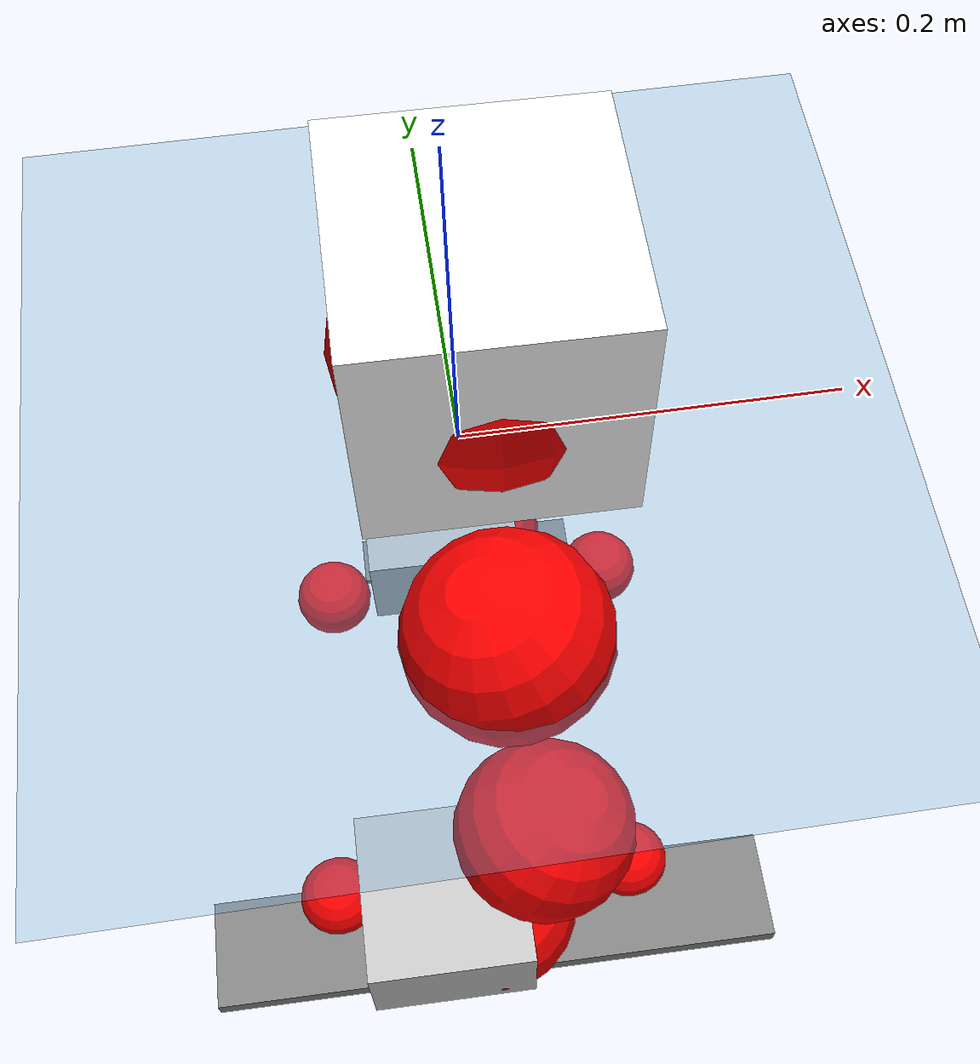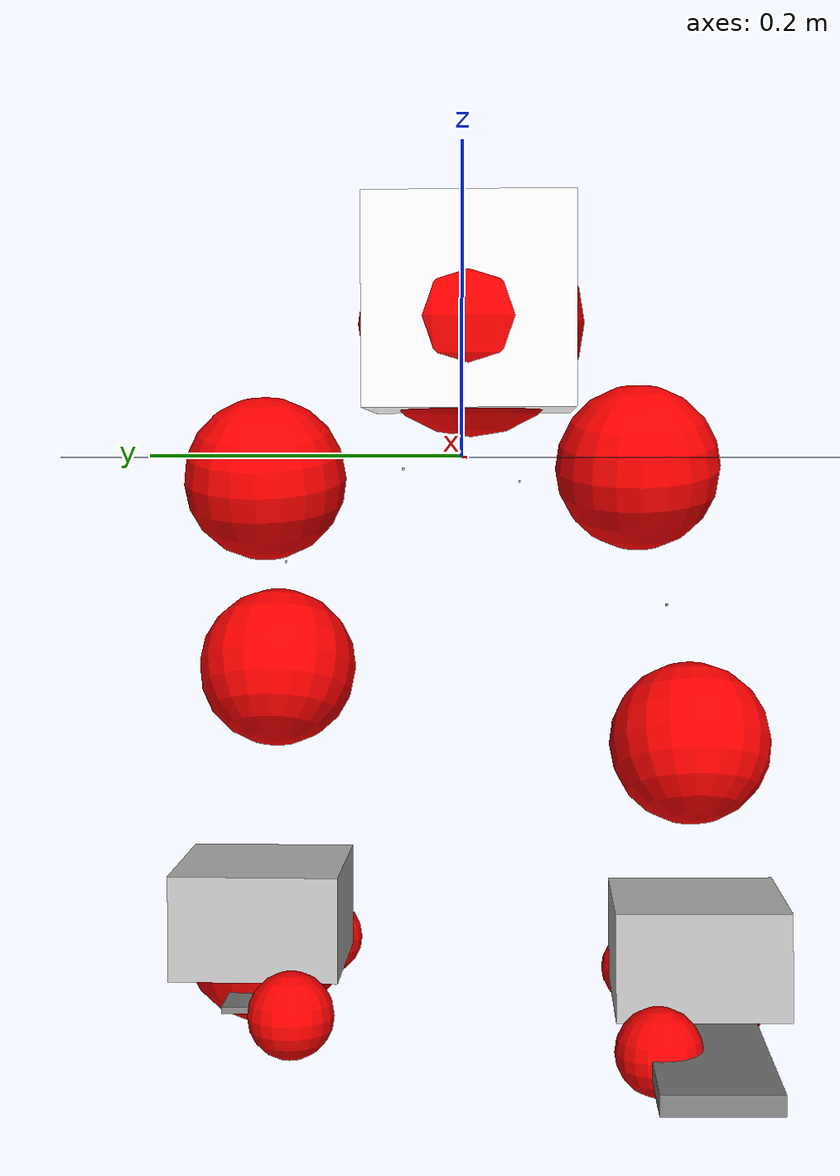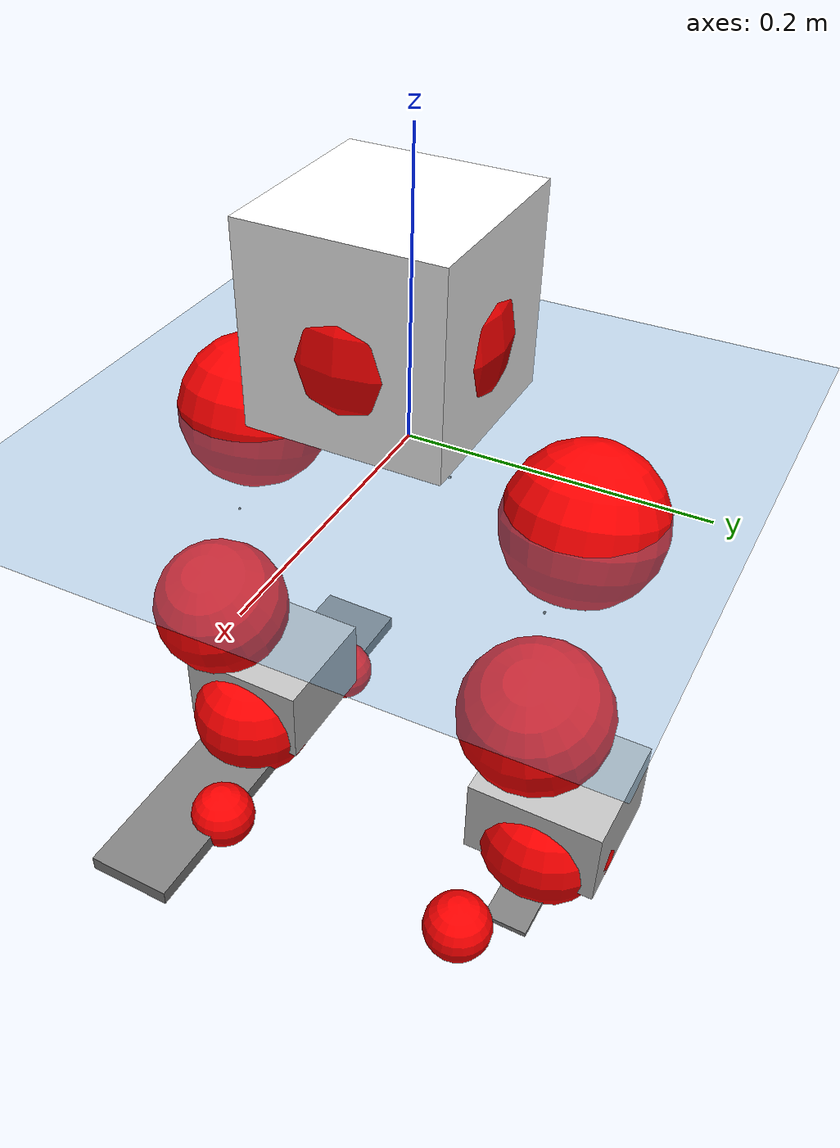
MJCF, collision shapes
<mujoco model="pi_12dof_release_v1">
  <compiler angle="radian" assetdir="assets" balanceinertia="true" inertiafromgeom="false"/>

  <option timestep="0.005" density="1.2" viscosity="2e-05"/>

  <size nkey="1"/>

  <visual>
    <quality shadowsize="8192"/>
    <map shadowclip="0.5"/>
  </visual>

  <default>
    <default class="/">
      <joint armature="0.01" damping="0.01" frictionloss="0.01"/>
      <geom contype="0" conaffinity="0" group="1" solref="-1000 -80"/>
      <site size="0.01 0.005 0.005" group="5"/>
      <general forcelimited="true" biastype="affine" gainprm="20" biasprm="0 -20 -0.5"/>
      <default class="foot">
        <geom size="0.0845 0.036 0.005" type="box" condim="6" group="4" priority="1" friction="0.9 0.2 0.2" solimp="0.015 1 0.005"/>
      </default>
      <default class="reward_collision_sphere">
        <geom group="5" rgba="1 0 0 1"/>
      </default>
    </default>
  </default>

  <asset>
    <texture type="skybox" colorspace="auto" name="//unnamed_texture_0" builtin="gradient" rgb1="0.95 0.95 0.95" rgb2="0.95 0.95 0.95" width="100" height="600"/>
    <texture type="2d" colorspace="auto" name="texplane" builtin="checker" rgb1="0.345 0.575 0.748" rgb2="0.345 0.575 0.748" markrgb="1 1 1" width="512" height="512"/>
    <material name="MatPlane" class="/" texture="texplane" texuniform="true" texrepeat="2 2" specular="0.9"/>
    <mesh name="baselink_1" class="/" file="baselink_1.STL"/>
    <mesh name="r_hip_pitch_link" class="/" file="r_hip_pitch_link.STL"/>
    <mesh name="r_hip_roll_link" class="/" file="r_hip_roll_link.STL"/>
    <mesh name="r_thigh_link" class="/" file="r_thigh_link.STL"/>
    <mesh name="r_calf_link" class="/" file="r_calf_link.STL"/>
    <mesh name="r_ankle_pitch_link" class="/" file="r_ankle_pitch_link.STL"/>
    <mesh name="r_ankle_roll_link" class="/" file="r_ankle_roll_link.STL"/>
    <mesh name="l_hip_pitch_link" class="/" file="l_hip_pitch_link.STL"/>
    <mesh name="l_hip_roll_link" class="/" file="l_hip_roll_link.STL"/>
    <mesh name="l_thigh_link" class="/" file="l_thigh_link.STL"/>
    <mesh name="l_calf_link" class="/" file="l_calf_link.STL"/>
    <mesh name="l_ankle_pitch_link" class="/" file="l_ankle_pitch_link.STL"/>
    <mesh name="l_ankle_roll_link" class="/" file="l_ankle_roll_link.STL"/>
  </asset>

  <worldbody>
    <geom name="floor" class="/" size="100 100 0.125" type="plane" group="0" material="MatPlane"/>
    <light name="toplight_shadow" class="/" pos="0 0 5" dir="0.0990148 0.0990148 -0.990148" type="directional" ambient="0.04 0.04 0.04" diffuse="0.55 0.55 0.55" specular="0.12 0.12 0.12"/>
    <light name="toplight_fill" class="/" pos="0 0 5" dir="0.0990148 0.0990148 -0.990148" type="directional" castshadow="false" ambient="0.04 0.04 0.04" diffuse="0.3 0.3 0.3" specular="0.08 0.08 0.08"/>
    <body name="trunk" pos="0.0133502 -0.00550811 0.0107462" quat="0.999981 -0.00164778 0.00231869 -0.00546695">
      <inertial pos="0.0144498 -0.0113218 0.0395194" quat="0.672829 0.0650798 -0.0299061 0.736323" mass="4.33113" diaginertia="0.0435133 0.0576092 0.00393091"/>
      <joint name="//unnamed_joint_0" type="free"/>
      <geom name="//unnamed_geom_1" class="/" type="mesh" density="0" rgba="1 1 1 1" mesh="baselink_1"/>
      <geom name="//unnamed_geom_2" class="/" size="0.0660872 0.0660872 0.0660872" pos="0 0 0.0851617" type="box" rgba="1 1 1 1"/>
      <geom name="//unnamed_geom_3" class="reward_collision_sphere" size="0.0726959" pos="0 0 0.0745164"/>
      <site name="imu" class="/" pos="-0.0567775 0.0930735 0.0442919" size="0.0132174"/>
      <camera name="track" class="/" pos="0 -2.90541 0" quat="0.707107 0.707107 0 0" mode="trackcom"/>
      <camera name="ego_camera" class="/" pos="0.1086 0 0.191614" quat="-0.5 -0.5 0.5 0.5"/>
      <body name="r_hip_pitch_link" pos="-0.00311578 -0.0310859 -0.0266305" quat="0.992027 -0.0088348 -0.125705 0.0019031">
        <inertial pos="0.0122123 -0.0840828 0.00723996" quat="0.0309221 0.672536 -0.0272184 0.738917" mass="0.680566" diaginertia="0.000539607 0.000491235 7.74659e-05"/>
        <joint name="r_hip_pitch_joint" class="/" pos="0 0 0" axis="-0.0371062 -0.998958 -0.026564" stiffness="0.0813284" range="-1.79514 1.16881" armature="0.0205837" damping="0" frictionloss="0.00809834"/>
        <geom name="//unnamed_geom_4" class="/" type="mesh" density="0" rgba="0.75294 0.75294 0.75294 1" mesh="r_hip_pitch_link"/>
        <geom name="//unnamed_geom_5" class="/" size="0.000660872 0.000660872 0.000660872" type="box" rgba="0.75294 0.75294 0.75294 1"/>
        <body name="r_hip_roll_link" pos="0.00141628 -0.0758826 0.00689255" quat="1 -0.000348402 0.000423921 -0.000324873">
          <inertial pos="0.000892094 0.0170171 -0.0460764" quat="0.688115 -0.0594041 -0.0631468 0.720404" mass="0.920943" diaginertia="0.00187771 0.00195848 0.000154254"/>
          <joint name="r_hip_roll_joint" class="/" pos="0 0 0" axis="-0.997739 -0.0643846 -0.019254" stiffness="0.0584536" range="-0.210858 0.167998" armature="0.00707189" damping="0.054359" frictionloss="0.0187591"/>
          <geom name="//unnamed_geom_6" class="/" type="mesh" density="0" rgba="0.75294 0.75294 0.75294 1" mesh="r_hip_roll_link"/>
          <geom name="//unnamed_geom_7" class="/" size="0.000660872 0.000660872 0.000660872" type="box" rgba="0.75294 0.75294 0.75294 1"/>
          <geom name="//unnamed_geom_8" class="reward_collision_sphere" size="0.0528697"/>
          <body name="r_thigh_link" pos="-0.0191335 -0.0174374 -0.0867565" quat="1 2.56255e-05 -0.000128996 0.000283738">
            <inertial pos="0.00794706 0.0130513 -0.0635129" quat="0.735655 0.677338 -0.00472836 -0.00173936" mass="0.199493" diaginertia="0.000643672 0.000643414 7.55319e-05"/>
            <joint name="r_thigh_joint" class="/" pos="0 0 0" axis="-0.0598088 -0.0171568 -0.998062" range="-0.458145 0.403584" armature="0.00876531" damping="0.0771179" frictionloss="0.025564"/>
            <geom name="//unnamed_geom_9" class="/" type="mesh" density="0" rgba="0.75294 0.75294 0.75294 1" mesh="r_thigh_link"/>
            <geom name="//unnamed_geom_10" class="/" size="0.000660872 0.000660872 0.000660872" type="box" rgba="0.75294 0.75294 0.75294 1"/>
            <body name="r_calf_link" pos="-0.0104546 -0.0147937 -0.091824" quat="0.947523 0.000182365 0.319685 -0.00139301">
              <inertial pos="0.00713006 0.011212 -0.0771609" quat="0.996508 0.0298672 -0.0735784 0.0258084" mass="1.49785" diaginertia="0.0200096 0.0156481 0.000172804"/>
              <joint name="r_calf_joint" class="/" pos="0 0 0" axis="0.0175027 -0.999458 0.0278799" stiffness="0.0813087" range="-1.98012 0.663255" armature="0.0233668" damping="0" frictionloss="0.0150811"/>
              <geom name="//unnamed_geom_11" class="/" type="mesh" density="0" rgba="0.75294 0.75294 0.75294 1" mesh="r_calf_link"/>
              <geom name="//unnamed_geom_12" class="/" size="0.000660872 0.000660872 0.000660872" type="box" rgba="0.75294 0.75294 0.75294 1"/>
              <geom name="//unnamed_geom_13" class="reward_collision_sphere" size="0.0528697"/>
              <body name="r_ankle_pitch_link" pos="-0.0103116 0.0030379 -0.13459" quat="0.979907 0.00389315 -0.199414 -0.00100209">
                <inertial pos="0.00790569 0.00523055 0.0173409" quat="-0.0791108 0.722549 -0.0421429 0.685484" mass="0.287118" diaginertia="0.0017529 0.00111901 0.000127672"/>
                <joint name="r_ankle_pitch_joint" class="/" pos="0 0 0" axis="-0.0088646 -0.998982 0.0442287" range="-1.32624 0.140087" armature="0.0124011" damping="0.00643651" frictionloss="0.00288234"/>
                <geom name="//unnamed_geom_14" class="/" type="mesh" density="0" rgba="0.75294 0.75294 0.75294 1" mesh="r_ankle_pitch_link"/>
                <geom name="//unnamed_geom_15" class="/" size="0.051548 0.0528697 0.0330436" type="box" rgba="0.75294 0.75294 0.75294 1"/>
                <body name="r_ankle_roll_link" pos="0.103943 -0.00042151 -0.00233034" quat="1 2.79913e-06 9.84555e-07 -4.25113e-06">
                  <inertial pos="-0.0408247 -0.00263689 -0.0343614" quat="0.580793 0.411181 0.467555 0.524407" mass="1.74439" diaginertia="0.00784794 0.00635398 0.000576824"/>
                  <joint name="r_ankle_roll_joint" class="/" pos="0 0 0" axis="-0.996649 0.0670085 0.046902" range="-0.405265 0.464966" armature="0.0252311" damping="0" frictionloss="0.0207012"/>
                  <geom name="//unnamed_geom_16" class="/" type="mesh" density="0" rgba="0.75294 0.75294 0.75294 1" mesh="r_ankle_roll_link"/>
                  <geom name="//unnamed_geom_17" class="/" type="mesh" rgba="0.75294 0.75294 0.75294 1" mesh="r_ankle_roll_link"/>
                  <geom name="right_foot" class="foot" size="0.183781 0.0346602 0.00629638" pos="-0.0738483 0 -0.0468389"/>
                  <geom name="//unnamed_geom_19" class="reward_collision_sphere" size="0.0528697" pos="-0.0724002 0 -0.0212904"/>
                  <geom name="//unnamed_geom_20" class="reward_collision_sphere" size="0.0264349" pos="0.0217201 0.0290541 -0.0425808"/>
                  <geom name="//unnamed_geom_21" class="reward_collision_sphere" size="0.0264349" pos="-0.173761 0.0290541 -0.0425808"/>
                  <site name="right_foot" class="foot" pos="-0.0738483 0 -0.0468389" size="0.0132174"/>
                </body>
              </body>
            </body>
          </body>
        </body>
      </body>
      <body name="l_hip_pitch_link" pos="0.00613841 0.044259 -0.0184909" quat="0.992188 -0.000459448 -0.124748 -0.000601864">
        <inertial pos="-0.00094346 0.0833124 0.0161232" quat="-0.0609864 0.714702 0.0323607 0.696013" mass="0.76054" diaginertia="0.000699934 0.000839029 0.000138608"/>
        <joint name="l_hip_pitch_joint" class="/" pos="0 0 0" axis="0.0382017 0.998404 -0.0415908" stiffness="0.0118774" range="-1.52312 1.66866" armature="0.00341077" damping="0" frictionloss="0.0169611"/>
        <geom name="//unnamed_geom_22" class="/" type="mesh" density="0" rgba="0.75294 0.75294 0.75294 1" mesh="l_hip_pitch_link"/>
        <geom name="//unnamed_geom_23" class="/" size="0.000660872 0.000660872 0.000660872" type="box" rgba="0.75294 0.75294 0.75294 1"/>
        <body name="l_hip_roll_link" pos="-0.003972 0.0897846 -0.00533465" quat="1 -0.000245967 0.000130913 -0.000187187">
          <inertial pos="0.0129395 -0.00551962 -0.0461891" quat="0.730741 -0.135617 -0.0633809 0.66604" mass="0.85009" diaginertia="0.00226358 0.00152029 0.00018634"/>
          <joint name="l_hip_roll_joint" class="/" pos="0 0 0" axis="-0.999532 0.000607099 -0.0305745" range="-0.159379 -0.169315" armature="0.0209905" damping="0.103324" frictionloss="0.0136126"/>
          <geom name="//unnamed_geom_24" class="/" type="mesh" density="0" rgba="0.75294 0.75294 0.75294 1" mesh="l_hip_roll_link"/>
          <geom name="//unnamed_geom_25" class="/" size="0.000660872 0.000660872 0.000660872" type="box" rgba="0.75294 0.75294 0.75294 1"/>
          <geom name="//unnamed_geom_26" class="reward_collision_sphere" size="0.0528697"/>
          <body name="l_thigh_link" pos="0.0119601 -0.00977405 -0.0598775" quat="0.999998 0.000461596 -0.000291402 -0.00171958">
            <inertial pos="-0.011493 0.0102475 -0.0633372" quat="0.655686 0.7519 -0.0525114 0.0443228" mass="0.29905" diaginertia="0.000791744 0.000529699 8.59837e-05"/>
            <joint name="l_thigh_joint" class="/" pos="0 0 0" axis="0.000532322 -0.00530454 -0.999986" stiffness="0.0899858" range="-0.652137 0.520891" armature="0.0140255" damping="0.0136315" frictionloss="0.016645"/>
            <geom name="//unnamed_geom_27" class="/" type="mesh" density="0" rgba="0.75294 0.75294 0.75294 1" mesh="l_thigh_link"/>
            <geom name="//unnamed_geom_28" class="/" size="0.000660872 0.000660872 0.000660872" type="box" rgba="0.75294 0.75294 0.75294 1"/>
            <body name="l_calf_link" pos="-0.000795783 0.00801377 -0.0743828" quat="0.948765 0.000946247 0.315968 -0.00269994">
              <inertial pos="-0.0024105 -0.0104458 -0.0608884" quat="0.99998 0.00354374 0.000823618 0.00508737" mass="2.01606" diaginertia="0.0295 0.0299337 0.00029057"/>
              <joint name="l_calf_joint" class="/" pos="0 0 0" axis="0.00296645 0.999988 0.00378153" range="-1.01473 1.32426" armature="0.013494" damping="0.0121167" frictionloss="0.00757714"/>
              <geom name="//unnamed_geom_29" class="/" type="mesh" density="0" rgba="0.75294 0.75294 0.75294 1" mesh="l_calf_link"/>
              <geom name="//unnamed_geom_30" class="/" size="0.000660872 0.000660872 0.000660872" type="box" rgba="0.75294 0.75294 0.75294 1"/>
              <geom name="//unnamed_geom_31" class="reward_collision_sphere" size="0.0528697"/>
              <body name="l_ankle_pitch_link" pos="-0.00635515 0.000772069 -0.166015" quat="0.980039 0.00030328 -0.198807 -0.000439612">
                <inertial pos="0.0189276 -0.0145372 8.42659e-05" quat="-0.00550702 0.705931 0.00391783 0.708249" mass="0.571184" diaginertia="0.00202939 0.00180103 0.000158552"/>
                <joint name="l_ankle_pitch_joint" class="/" pos="0 0 0" axis="0.00426724 0.99999 0.000928879" stiffness="0.00921201" range="-0.176057 1.42739" armature="0.0220739" damping="0.0256679" frictionloss="0.00869778"/>
                <geom name="//unnamed_geom_32" class="/" type="mesh" density="0" rgba="0.75294 0.75294 0.75294 1" mesh="l_ankle_pitch_link"/>
                <geom name="//unnamed_geom_33" class="/" size="0.051548 0.0528697 0.0330436" type="box" rgba="0.75294 0.75294 0.75294 1"/>
                <body name="l_ankle_roll_link" pos="0.0916821 0.00219853 -0.00191301" quat="0.999996 -0.00161447 0.0012799 0.0021082">
                  <inertial pos="-0.0431902 0.000950722 -0.0142699" quat="0.568779 0.448663 0.428945 0.539628" mass="1.62997" diaginertia="0.00905243 0.00816454 0.000426932"/>
                  <joint name="l_ankle_roll_joint" class="/" pos="0 0 0" axis="-0.999195 0.0155268 0.0369933" stiffness="0.00949915" range="-0.32117 0.154191" armature="0.00437811" damping="0.0203386" frictionloss="0.0129587"/>
                  <geom name="//unnamed_geom_34" class="/" type="mesh" density="0" rgba="0.75294 0.75294 0.75294 1" mesh="l_ankle_roll_link"/>
                  <geom name="//unnamed_geom_35" class="/" type="mesh" rgba="0.75294 0.75294 0.75294 1" mesh="l_ankle_roll_link"/>
                  <geom name="left_foot" class="foot" size="0.0759091 0.0170126 0.00206532" pos="-0.0738483 0 -0.0468389"/>
                  <geom name="//unnamed_geom_37" class="reward_collision_sphere" size="0.0528697" pos="-0.0724002 0 -0.0212904"/>
                  <geom name="//unnamed_geom_38" class="reward_collision_sphere" size="0.0264349" pos="0.0217201 -0.0290541 -0.0425808"/>
                  <geom name="//unnamed_geom_39" class="reward_collision_sphere" size="0.0264349" pos="-0.173761 -0.0290541 -0.0425808"/>
                  <site name="left_foot" class="foot" pos="-0.0738483 0 -0.0468389" size="0.0132174"/>
                </body>
              </body>
            </body>
          </body>
        </body>
      </body>
    </body>
  </worldbody>

  <contact>
    <pair class="/" geom1="floor" geom2="right_foot" name="//unnamed_contact_1"/>
    <pair class="/" geom1="floor" geom2="left_foot" name="//unnamed_contact_0"/>
  </contact>

  <actuator>
    <general name="r_hip_pitch_joint" class="/" joint="r_hip_pitch_joint" forcerange="-28.3123 28.3123" gainprm="27.971" biasprm="0 -27.971 -0.700516"/>
    <general name="r_hip_roll_joint" class="/" joint="r_hip_roll_joint" forcerange="-44.3043 44.3043" gainprm="27.971" biasprm="0 -27.971 -0.700516"/>
    <general name="r_thigh_joint" class="/" joint="r_thigh_joint" forcerange="-16.3692 16.3692" gainprm="27.971" biasprm="0 -27.971 -0.700516"/>
    <general name="r_calf_joint" class="/" joint="r_calf_joint" forcerange="-36.4056 36.4056" gainprm="27.971" biasprm="0 -27.971 -0.700516"/>
    <general name="r_ankle_pitch_joint" class="/" joint="r_ankle_pitch_joint" forcerange="-18.4358 18.4358" gainprm="27.971" biasprm="0 -27.971 -0.700516"/>
    <general name="r_ankle_roll_joint" class="/" joint="r_ankle_roll_joint" forcerange="-16.0329 16.0329" gainprm="27.971" biasprm="0 -27.971 -0.700516"/>
    <general name="l_hip_pitch_joint" class="/" joint="l_hip_pitch_joint" forcerange="-21.4633 21.4633" gainprm="27.971" biasprm="0 -27.971 -0.700516"/>
    <general name="l_hip_roll_joint" class="/" joint="l_hip_roll_joint" forcerange="-11.8429 11.8429" gainprm="27.971" biasprm="0 -27.971 -0.700516"/>
    <general name="l_thigh_joint" class="/" joint="l_thigh_joint" forcerange="-44.8425 44.8425" gainprm="27.971" biasprm="0 -27.971 -0.700516"/>
    <general name="l_calf_joint" class="/" joint="l_calf_joint" forcerange="-23.1823 23.1823" gainprm="27.971" biasprm="0 -27.971 -0.700516"/>
    <general name="l_ankle_pitch_joint" class="/" joint="l_ankle_pitch_joint" forcerange="-15.301 15.301" gainprm="27.971" biasprm="0 -27.971 -0.700516"/>
    <general name="l_ankle_roll_joint" class="/" joint="l_ankle_roll_joint" forcerange="-7.98008 7.98008" gainprm="27.971" biasprm="0 -27.971 -0.700516"/>
  </actuator>

  <sensor>
    <gyro site="imu" name="imu_angular_velocity"/>
    <velocimeter site="imu" name="imu_linear_velocity"/>
    <framelinvel objtype="site" objname="left_foot" name="left_foot_global_linear_velocity"/>
    <framelinvel objtype="site" objname="right_foot" name="right_foot_global_linear_velocity"/>
  </sensor>

  <keyframe>
    <key name="home" qpos="0 0 0.291 1 0 0 0 0.4 0 0 -0.8 0.4 0 -0.4 0 0 0.8 -0.4 0"/>
  </keyframe>
</mujoco>
